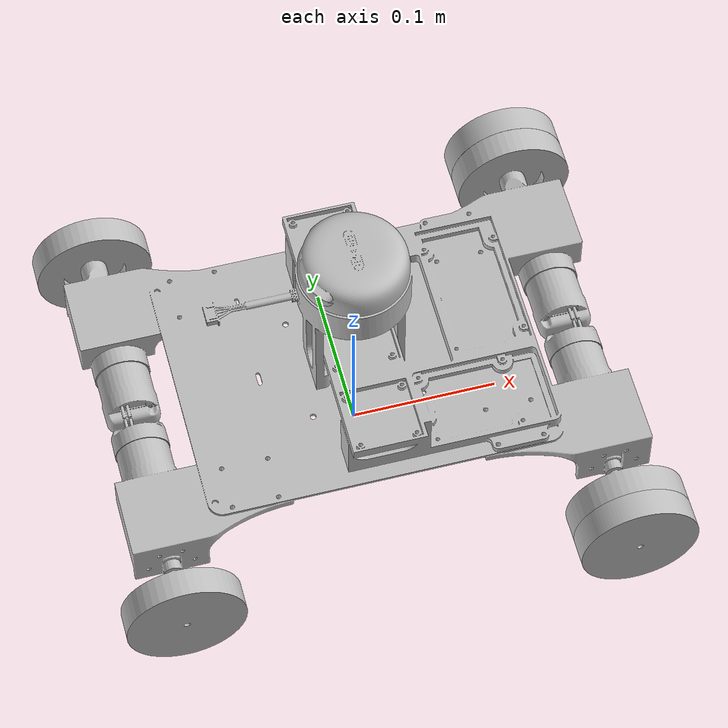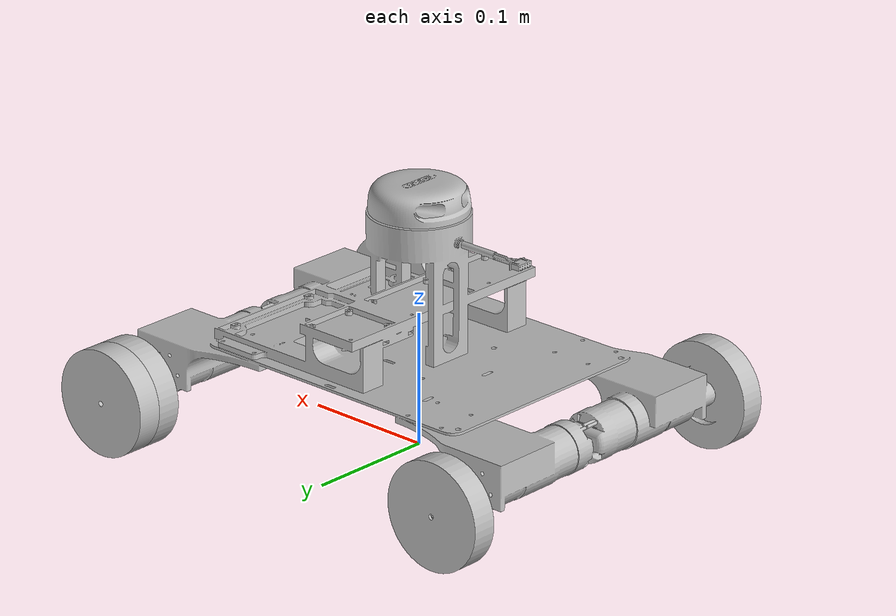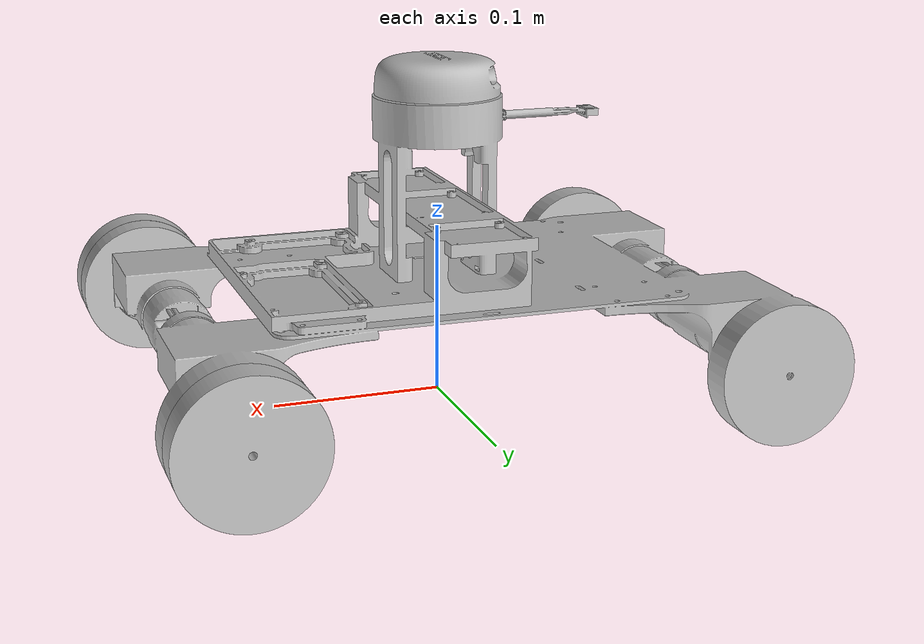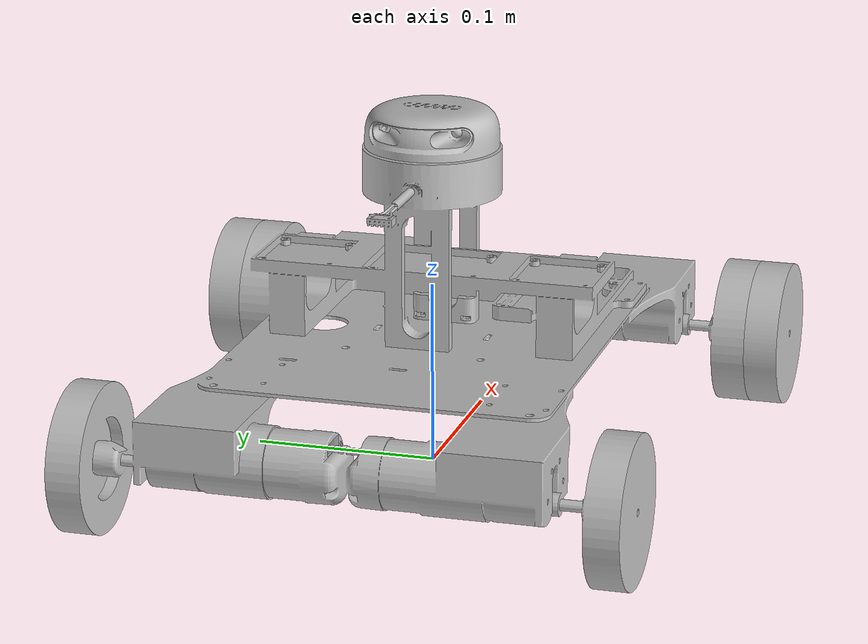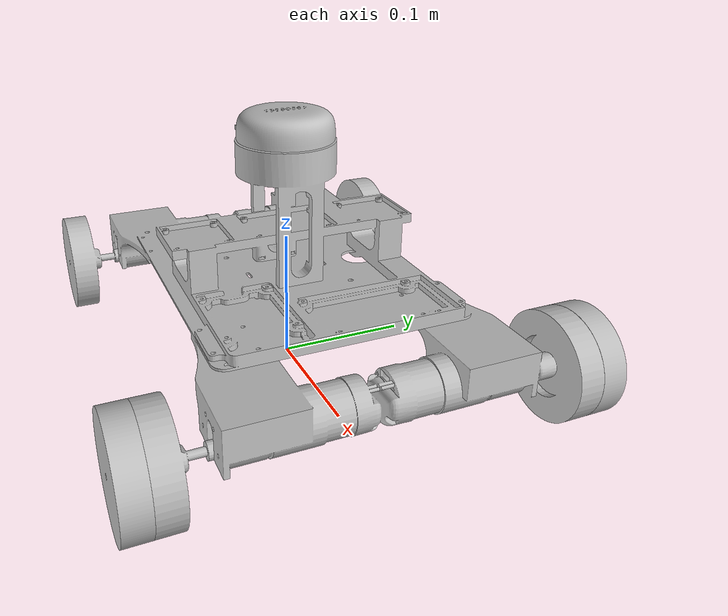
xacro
<?xml version="1.0" ?>
<robot name="dabomb" xmlns:xacro="http://www.ros.org/wiki/xacro">

<material name="gray">
  <color rgba="0.75 0.75 0.75 1.0"/>  <!-- This is gray with full opacity -->
</material>

<xacro:include filename="$(find dabomb_description)/urdf/materials.xacro" />
<xacro:include filename="$(find dabomb_description)/urdf/dabomb.trans" />
<xacro:include filename="$(find dabomb_description)/urdf/dabomb.gazebo" />
<link name="base_footprint" />

<link name="base_link">
  <inertial>
    <origin xyz="0.001965778230803289 0.00012164122075361151 0.06076837613584456" rpy="0 0 0"/>
    <mass value="3.2995710672768235"/>
    <inertia ixx="0.032808" iyy="0.061307" izz="0.086932" ixy="-3.2e-05" iyz="-8e-06" ixz="-8.9e-05"/>
  </inertial>
  <visual>
    <origin xyz="0 0 -0.04" rpy="0 0 0"/>
    <geometry>
      <mesh filename="file://$(find dabomb_description)/meshes/base_link.stl" scale="0.001 0.001 0.001"/>
    </geometry>
    <material name="gray"/>
  </visual>
  <collision>
    <origin xyz="0 0 -0.04" rpy="0 0 0"/>
    <geometry>
      <mesh filename="file://$(find dabomb_description)/meshes/base_link.stl" scale="0.001 0.001 0.001"/>
    </geometry>
  </collision>
</link>

<link name="Wheel1_1">
  <inertial>
    <origin xyz="3.605747672386084e-07 0.00934999998147884 -8.583050173371909e-10" rpy="0 0 0"/>
    <mass value="0.7357403909763499"/>
    <inertia ixx="0.000317" iyy="0.00059" izz="0.000317" ixy="-0.0" iyz="0.0" ixz="0.0"/>
  </inertial>
  <visual>
    <origin xyz="-0.15 -0.15 -0.04" rpy="0 0 0"/>
    <geometry>
      <mesh filename="file://$(find dabomb_description)/meshes/Wheel1_1.stl" scale="0.001 0.001 0.001"/>
    </geometry>
    <material name="gray"/>
  </visual>
  <collision>
    <origin xyz="-0.15 -0.15 -0.04" rpy="0 0 0"/>
    <geometry>
      <mesh filename="file://$(find dabomb_description)/meshes/Wheel1_1.stl" scale="0.001 0.001 0.001"/>
    </geometry>
  </collision>
</link>

<link name="Wheel3_1">
  <inertial>
    <origin xyz="-3.6057476762718643e-07 0.00934999998147884 -8.583049965205092e-10" rpy="0 0 0"/>
    <mass value="0.7357403909763499"/>
    <inertia ixx="0.000317" iyy="0.00059" izz="0.000317" ixy="-0.0" iyz="0.0" ixz="0.0"/>
  </inertial>
  <visual>
    <origin xyz="0.15 -0.15 -0.04" rpy="0 0 0"/>
    <geometry>
      <mesh filename="file://$(find dabomb_description)/meshes/Wheel3_1.stl" scale="0.001 0.001 0.001"/>
    </geometry>
    <material name="gray"/>
  </visual>
  <collision>
    <origin xyz="0.15 -0.15 -0.04" rpy="0 0 0"/>
    <geometry>
      <mesh filename="file://$(find dabomb_description)/meshes/Wheel3_1.stl" scale="0.001 0.001 0.001"/>
    </geometry>
  </collision>
</link>

<link name="Wheel2_1">
  <inertial>
    <origin xyz="3.605747672386084e-07 -0.00934999998147884 -8.583056140820666e-10" rpy="0 0 0"/>
    <mass value="0.7357403909763499"/>
    <inertia ixx="0.000317" iyy="0.00059" izz="0.000317" ixy="0.0" iyz="-0.0" ixz="-0.0"/>
  </inertial>
  <visual>
    <origin xyz="-0.15 0.15 -0.04" rpy="0 0 0"/>
    <geometry>
      <mesh filename="file://$(find dabomb_description)/meshes/Wheel2_1.stl" scale="0.001 0.001 0.001"/>
    </geometry>
    <material name="gray"/>
  </visual>
  <collision>
    <origin xyz="-0.15 0.15 -0.04" rpy="0 0 0"/>
    <geometry>
      <mesh filename="file://$(find dabomb_description)/meshes/Wheel2_1.stl" scale="0.001 0.001 0.001"/>
    </geometry>
  </collision>
</link>

<link name="Wheel4_1">
  <inertial>
    <origin xyz="-3.6057476762718643e-07 -0.00934999998147884 -8.583055516320215e-10" rpy="0 0 0"/>
    <mass value="0.7357403909763499"/>
    <inertia ixx="0.000317" iyy="0.00059" izz="0.000317" ixy="0.0" iyz="-0.0" ixz="-0.0"/>
  </inertial>
  <visual>
    <origin xyz="0.15 0.15 -0.04" rpy="0 0 0"/>
    <geometry>
      <mesh filename="file://$(find dabomb_description)/meshes/Wheel4_1.stl" scale="0.001 0.001 0.001"/>
    </geometry>
    <material name="gray"/>
  </visual>
  <collision>
    <origin xyz="0.15 0.15 -0.04" rpy="0 0 0"/>
    <geometry>
      <mesh filename="file://$(find dabomb_description)/meshes/Wheel4_1.stl" scale="0.001 0.001 0.001"/>
    </geometry>
  </collision>
</link>

<link name="laser">
  <inertial>
    <origin xyz="0.0039907248324316845 -0.00022724344297910342 -0.002459373991692604" rpy="0 0 0"/>
    <mass value="0.2649835736448253"/>
    <inertia ixx="8.2e-05" iyy="8.5e-05" izz="0.000145" ixy="-0.0" iyz="0.0" ixz="-2e-06"/>
  </inertial>
  <visual>
    <origin xyz="0.0 -0.0 -0.19" rpy="0 0 0"/>
    <geometry>
      <mesh filename="file://$(find dabomb_description)/meshes/LIDAR_1.stl" scale="0.001 0.001 0.001"/>
    </geometry>
    <material name="gray"/>
  </visual>
  <collision>
    <origin xyz="0.0 -0.0 -0.19" rpy="0 0 0"/>
    <geometry>
      <mesh filename="file://$(find dabomb_description)/meshes/LIDAR_1.stl" scale="0.001 0.001 0.001"/>
    </geometry>
  </collision>
</link>

<joint name="base_joint" type="fixed">
  <origin xyz="0.0 0.0 0.04" rpy="0 0 0"/>
  <parent link="base_footprint"/>
  <child link="base_link"/>
</joint>

<joint name="Wheel1" type="continuous">
  <origin xyz="0.15 0.15 0.0" rpy="0 0 0"/>
  <parent link="base_link"/>
  <child link="Wheel1_1"/>
  <axis xyz="-0.0 1.0 0.0"/>
  <joint_properties damping="100" friction="1000"/>
  <limit effort="1000.0" lower="-1e+16" upper="1e+16" velocity="10"/>
  <joint_properties damping="1.0" friction="1"/>
</joint>

<joint name="Wheel3" type="continuous">
  <origin xyz="-0.15 0.15 0.0" rpy="0 0 0"/>
  <parent link="base_link"/>
  <child link="Wheel3_1"/>
  <axis xyz="0.0 1.0 0.0"/>
  <joint_properties damping="100" friction="1000"/>
  <limit effort="1000.0" lower="-1e+16" upper="1e+16" velocity="10"/>
  <joint_properties damping="1.0" friction="1"/>
</joint>

<joint name="Wheel2" type="continuous">
  <origin xyz="0.15 -0.15 0.0" rpy="0 0 0"/>
  <parent link="base_link"/>
  <child link="Wheel2_1"/>
  <axis xyz="-0.0 -1.0 0.0"/>
  <joint_properties damping="100" friction="1000"/>
  <limit effort="1000.0" lower="-1e+16" upper="1e+16" velocity="10"/>
  <joint_properties damping="1.0" friction="1"/>
</joint>

<joint name="Wheel4" type="continuous">
  <origin xyz="-0.15 -0.15 0.0" rpy="0 0 0"/>
  <parent link="base_link"/>
  <child link="Wheel4_1"/>
  <axis xyz="0.0 -1.0 0.0"/>
  <joint_properties damping="100" friction="1000"/>
  <limit effort="1000.0" lower="-1e+16" upper="1e+16" velocity="10"/>
  <joint_properties damping="1.0" friction="1"/>
</joint>

<joint name="laser_joint" type="fixed">
  <origin xyz="0.0 0.0 0.15" rpy="0 0 ${pi}"/>
  <parent link="base_link"/>
  <child link="laser"/>
  <joint_properties damping="100" friction="1000"/>
  <limit effort="1000.0" lower="-1e+16" upper="1e+16" velocity="10"/>
  <joint_properties damping="1.0" friction="1"/>
</joint>

</robot>

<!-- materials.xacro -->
<robot name="dabomb" xmlns:xacro="http://www.ros.org/wiki/xacro" >

<material name="silver">
  <color rgba="0.700 0.700 0.700 1.000"/>
</material>

</robot>
